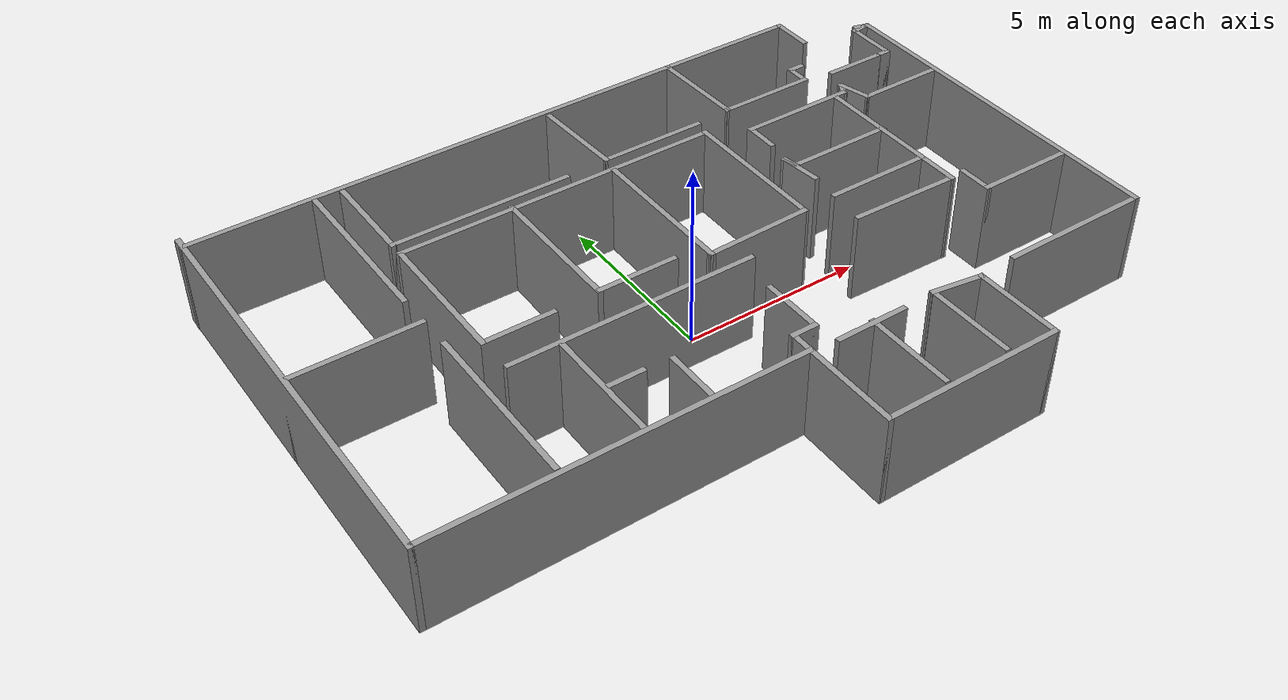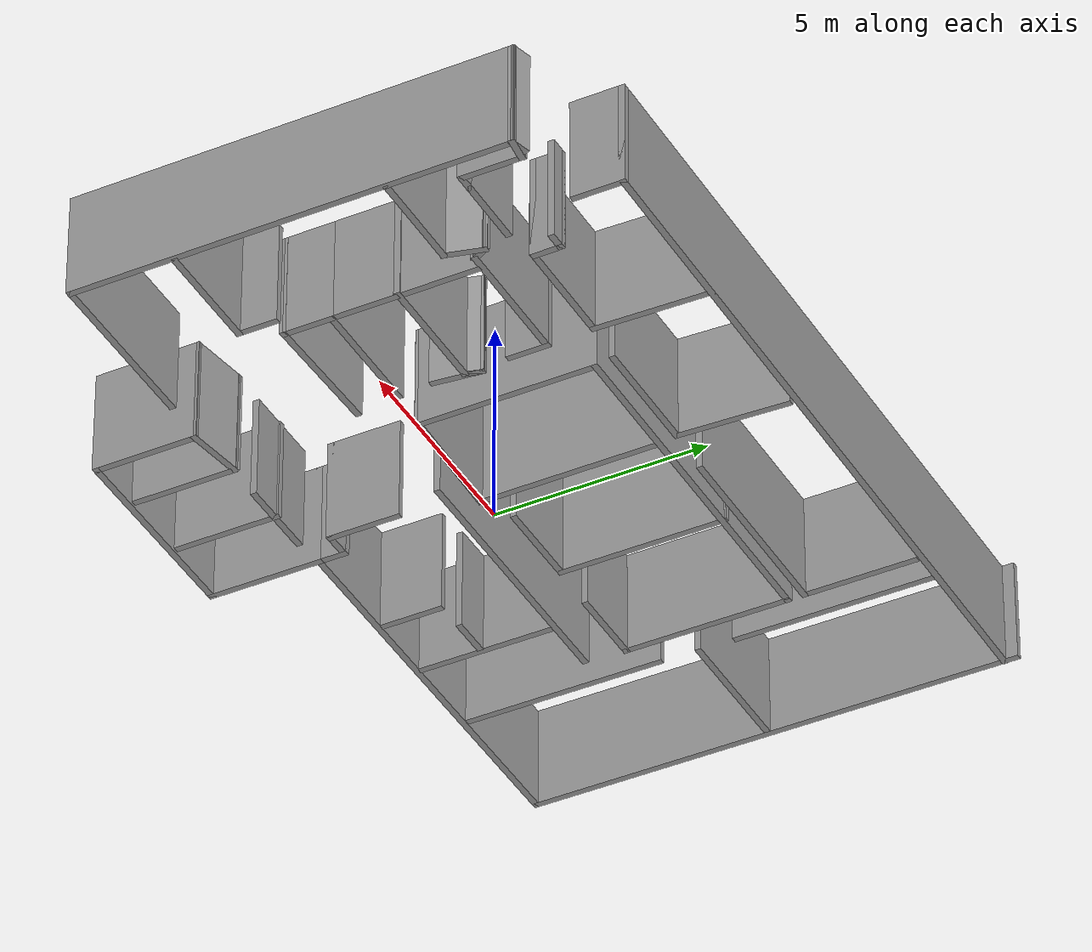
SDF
<?xml version='1.0'?>
<sdf version='1.6'>
  <model name='4th_floor_real'>
    <pose frame=''>0.402122 0.471759 0 0 -0 0</pose>
    <link name='Wall_10'>
      <collision name='Wall_10_Collision'>
        <geometry>
          <box>
            <size>10.25 0.15 2.5</size>
          </box>
        </geometry>
        <pose frame=''>0 0 1.25 0 -0 0</pose>
      </collision>
      <visual name='Wall_10_Visual'>
        <pose frame=''>0 0 1.25 0 -0 0</pose>
        <geometry>
          <box>
            <size>10.25 0.15 2.5</size>
          </box>
        </geometry>
        <material>
          <script>
            <uri>file://media/materials/scripts/gazebo.material</uri>
            <name>Gazebo/Grey</name>
          </script>
          <ambient>1 1 1 1</ambient>
        </material>
        <meta>
          <layer>0</layer>
        </meta>
      </visual>
      <pose frame=''>9.95518 0.377427 0 0 -0 1.5708</pose>
    </link>
    <link name='Wall_11'>
      <collision name='Wall_11_Collision'>
        <geometry>
          <box>
            <size>0.5 0.15 2.5</size>
          </box>
        </geometry>
        <pose frame=''>0 0 1.25 0 -0 0</pose>
      </collision>
      <visual name='Wall_11_Visual'>
        <pose frame=''>0 0 1.25 0 -0 0</pose>
        <geometry>
          <box>
            <size>0.5 0.15 2.5</size>
          </box>
        </geometry>
        <material>
          <script>
            <uri>file://media/materials/scripts/gazebo.material</uri>
            <name>Gazebo/Grey</name>
          </script>
          <ambient>1 1 1 1</ambient>
        </material>
        <meta>
          <layer>0</layer>
        </meta>
      </visual>
      <pose frame=''>9.78615 5.47272 0 0 -0 2.87979</pose>
    </link>
    <link name='Wall_13'>
      <collision name='Wall_13_Collision'>
        <geometry>
          <box>
            <size>1.25 0.15 2.5</size>
          </box>
        </geometry>
        <pose frame=''>0 0 1.25 0 -0 0</pose>
      </collision>
      <visual name='Wall_13_Visual'>
        <pose frame=''>0 0 1.25 0 -0 0</pose>
        <geometry>
          <box>
            <size>1.25 0.15 2.5</size>
          </box>
        </geometry>
        <material>
          <script>
            <uri>file://media/materials/scripts/gazebo.material</uri>
            <name>Gazebo/Grey</name>
          </script>
          <ambient>1 1 1 1</ambient>
        </material>
        <meta>
          <layer>0</layer>
        </meta>
      </visual>
      <pose frame=''>7.87796 6.27451 0 0 -0 1.5708</pose>
    </link>
    <link name='Wall_14'>
      <collision name='Wall_14_Collision'>
        <geometry>
          <box>
            <size>18 0.15 2.5</size>
          </box>
        </geometry>
        <pose frame=''>0 0 1.25 0 -0 0</pose>
      </collision>
      <visual name='Wall_14_Visual'>
        <pose frame=''>0 0 1.25 0 -0 0</pose>
        <geometry>
          <box>
            <size>18 0.15 2.5</size>
          </box>
        </geometry>
        <material>
          <script>
            <uri>file://media/materials/scripts/gazebo.material</uri>
            <name>Gazebo/Grey</name>
          </script>
          <ambient>1 1 1 1</ambient>
        </material>
        <meta>
          <layer>0</layer>
        </meta>
      </visual>
      <pose frame=''>-1.04704 6.82451 0 0 -0 3.14159</pose>
    </link>
    <link name='Wall_16'>
      <collision name='Wall_16_Collision'>
        <geometry>
          <box>
            <size>4.75 0.15 2.5</size>
          </box>
        </geometry>
        <pose frame=''>0 0 1.25 0 -0 0</pose>
      </collision>
      <visual name='Wall_16_Visual'>
        <pose frame=''>0 0 1.25 0 -0 0</pose>
        <geometry>
          <box>
            <size>4.75 0.15 2.5</size>
          </box>
        </geometry>
        <material>
          <script>
            <uri>file://media/materials/scripts/gazebo.material</uri>
            <name>Gazebo/Grey</name>
          </script>
          <ambient>1 1 1 1</ambient>
        </material>
        <meta>
          <layer>0</layer>
        </meta>
      </visual>
      <pose frame=''>-6.60513 4.39544 0 0 -0 -1.5708</pose>
    </link>
    <link name='Wall_18'>
      <collision name='Wall_18_Collision'>
        <geometry>
          <box>
            <size>3.5 0.15 2.5</size>
          </box>
        </geometry>
        <pose frame=''>0 0 1.25 0 -0 0</pose>
      </collision>
      <visual name='Wall_18_Visual'>
        <pose frame=''>0 0 1.25 0 -0 0</pose>
        <geometry>
          <box>
            <size>3.5 0.15 2.5</size>
          </box>
        </geometry>
        <material>
          <script>
            <uri>file://media/materials/scripts/gazebo.material</uri>
            <name>Gazebo/Grey</name>
          </script>
          <ambient>1 1 1 1</ambient>
        </material>
        <meta>
          <layer>0</layer>
        </meta>
      </visual>
      <pose frame=''>-8.28795 1.19348 0 0 -0 0</pose>
    </link>
    <link name='Wall_20'>
      <collision name='Wall_20_Collision'>
        <geometry>
          <box>
            <size>4.75 0.15 2.5</size>
          </box>
        </geometry>
        <pose frame=''>0 0 1.25 0 -0 0</pose>
      </collision>
      <visual name='Wall_20_Visual'>
        <pose frame=''>0 0 1.25 0 -0 0</pose>
        <geometry>
          <box>
            <size>4.75 0.15 2.5</size>
          </box>
        </geometry>
        <material>
          <script>
            <uri>file://media/materials/scripts/gazebo.material</uri>
            <name>Gazebo/Grey</name>
          </script>
          <ambient>1 1 1 1</ambient>
        </material>
        <meta>
          <layer>0</layer>
        </meta>
      </visual>
      <pose frame=''>-6.56468 -2.03699 0 0 -0 -1.5708</pose>
    </link>
    <link name='Wall_22'>
      <collision name='Wall_22_Collision'>
        <geometry>
          <box>
            <size>6.75 0.15 2.5</size>
          </box>
        </geometry>
        <pose frame=''>0 0 1.25 0 -0 0</pose>
      </collision>
      <visual name='Wall_22_Visual'>
        <pose frame=''>0 0 1.25 0 -0 0</pose>
        <geometry>
          <box>
            <size>6.75 0.15 2.5</size>
          </box>
        </geometry>
        <material>
          <script>
            <uri>file://media/materials/scripts/gazebo.material</uri>
            <name>Gazebo/Grey</name>
          </script>
          <ambient>1 1 1 1</ambient>
        </material>
        <meta>
          <layer>0</layer>
        </meta>
      </visual>
      <pose frame=''>-2.49602 -1.15294 0 0 -0 0</pose>
    </link>
    <link name='Wall_24'>
      <collision name='Wall_24_Collision'>
        <geometry>
          <box>
            <size>3.25 0.15 2.5</size>
          </box>
        </geometry>
        <pose frame=''>0 0 1.25 0 -0 0</pose>
      </collision>
      <visual name='Wall_24_Visual'>
        <pose frame=''>0 0 1.25 0 -0 0</pose>
        <geometry>
          <box>
            <size>3.25 0.15 2.5</size>
          </box>
        </geometry>
        <material>
          <script>
            <uri>file://media/materials/scripts/gazebo.material</uri>
            <name>Gazebo/Grey</name>
          </script>
          <ambient>1 1 1 1</ambient>
        </material>
        <meta>
          <layer>0</layer>
        </meta>
      </visual>
      <pose frame=''>-4.46099 -2.8243 0 0 -0 -1.5708</pose>
    </link>
    <link name='Wall_26'>
      <collision name='Wall_26_Collision'>
        <geometry>
          <box>
            <size>1 0.15 2.5</size>
          </box>
        </geometry>
        <pose frame=''>0 0 1.25 0 -0 0</pose>
      </collision>
      <visual name='Wall_26_Visual'>
        <pose frame=''>0 0 1.25 0 -0 0</pose>
        <geometry>
          <box>
            <size>1 0.15 2.5</size>
          </box>
        </geometry>
        <material>
          <script>
            <uri>file://media/materials/scripts/gazebo.material</uri>
            <name>Gazebo/Grey</name>
          </script>
          <ambient>1 1 1 1</ambient>
        </material>
        <meta>
          <layer>0</layer>
        </meta>
      </visual>
      <pose frame=''>-3.91462 -2.93298 0 0 -0 0</pose>
    </link>
    <link name='Wall_28'>
      <collision name='Wall_28_Collision'>
        <geometry>
          <box>
            <size>1.5 0.15 2.5</size>
          </box>
        </geometry>
        <pose frame=''>0 0 1.25 0 -0 0</pose>
      </collision>
      <visual name='Wall_28_Visual'>
        <pose frame=''>0 0 1.25 0 -0 0</pose>
        <geometry>
          <box>
            <size>1.5 0.15 2.5</size>
          </box>
        </geometry>
        <material>
          <script>
            <uri>file://media/materials/scripts/gazebo.material</uri>
            <name>Gazebo/Grey</name>
          </script>
          <ambient>1 1 1 1</ambient>
        </material>
        <meta>
          <layer>0</layer>
        </meta>
      </visual>
      <pose frame=''>-2.7214 -3.6889 0 0 -0 -1.5708</pose>
    </link>
    <link name='Wall_3'>
      <collision name='Wall_3_Collision'>
        <geometry>
          <box>
            <size>11.75 0.15 2.5</size>
          </box>
        </geometry>
        <pose frame=''>0 0 1.25 0 -0 0</pose>
      </collision>
      <visual name='Wall_3_Visual'>
        <pose frame=''>0 0 1.25 0 -0 0</pose>
        <geometry>
          <box>
            <size>11.75 0.15 2.5</size>
          </box>
        </geometry>
        <material>
          <script>
            <uri>file://media/materials/scripts/gazebo.material</uri>
            <name>Gazebo/Grey</name>
          </script>
          <ambient>1 1 1 1</ambient>
        </material>
        <meta>
          <layer>0</layer>
        </meta>
      </visual>
      <pose frame=''>-9.96295 1.3 0 0 -0 -1.5708</pose>
    </link>
    <link name='Wall_30'>
      <collision name='Wall_30_Collision'>
        <geometry>
          <box>
            <size>0.75 0.15 2.5</size>
          </box>
        </geometry>
        <pose frame=''>0 0 1.25 0 -0 0</pose>
      </collision>
      <visual name='Wall_30_Visual'>
        <pose frame=''>0 0 1.25 0 -0 0</pose>
        <geometry>
          <box>
            <size>0.75 0.15 2.5</size>
          </box>
        </geometry>
        <material>
          <script>
            <uri>file://media/materials/scripts/gazebo.material</uri>
            <name>Gazebo/Grey</name>
          </script>
          <ambient>1 1 1 1</ambient>
        </material>
        <meta>
          <layer>0</layer>
        </meta>
      </visual>
      <pose frame=''>-0.112948 -4.2 0 0 -0 1.5708</pose>
    </link>
    <link name='Wall_32'>
      <collision name='Wall_32_Collision'>
        <geometry>
          <box>
            <size>0.75 0.15 2.5</size>
          </box>
        </geometry>
        <pose frame=''>0 0 1.25 0 -0 0</pose>
      </collision>
      <visual name='Wall_32_Visual'>
        <pose frame=''>0 0 1.25 0 -0 0</pose>
        <geometry>
          <box>
            <size>0.75 0.15 2.5</size>
          </box>
        </geometry>
        <material>
          <script>
            <uri>file://media/materials/scripts/gazebo.material</uri>
            <name>Gazebo/Grey</name>
          </script>
          <ambient>1 1 1 1</ambient>
        </material>
        <meta>
          <layer>0</layer>
        </meta>
      </visual>
      <pose frame=''>0.187052 -3.9 0 0 -0 0</pose>
    </link>
    <link name='Wall_33'>
      <collision name='Wall_33_Collision'>
        <geometry>
          <box>
            <size>1.75 0.15 2.5</size>
          </box>
        </geometry>
        <pose frame=''>0 0 1.25 0 -0 0</pose>
      </collision>
      <visual name='Wall_33_Visual'>
        <pose frame=''>0 0 1.25 0 -0 0</pose>
        <geometry>
          <box>
            <size>1.75 0.15 2.5</size>
          </box>
        </geometry>
        <material>
          <script>
            <uri>file://media/materials/scripts/gazebo.material</uri>
            <name>Gazebo/Grey</name>
          </script>
          <ambient>1 1 1 1</ambient>
        </material>
        <meta>
          <layer>0</layer>
        </meta>
      </visual>
      <pose frame=''>0.487052 -3.1 0 0 -0 1.5708</pose>
    </link>
    <link name='Wall_35'>
      <collision name='Wall_35_Collision'>
        <geometry>
          <box>
            <size>2 0.15 2.5</size>
          </box>
        </geometry>
        <pose frame=''>0 0 1.25 0 -0 0</pose>
      </collision>
      <visual name='Wall_35_Visual'>
        <pose frame=''>0 0 1.25 0 -0 0</pose>
        <geometry>
          <box>
            <size>2 0.15 2.5</size>
          </box>
        </geometry>
        <material>
          <script>
            <uri>file://media/materials/scripts/gazebo.material</uri>
            <name>Gazebo/Grey</name>
          </script>
          <ambient>1 1 1 1</ambient>
        </material>
        <meta>
          <layer>0</layer>
        </meta>
      </visual>
      <pose frame=''>1.56141 -4.59166 0 0 -0 0</pose>
    </link>
    <link name='Wall_37'>
      <collision name='Wall_37_Collision'>
        <geometry>
          <box>
            <size>2.5 0.15 2.5</size>
          </box>
        </geometry>
        <pose frame=''>0 0 1.25 0 -0 0</pose>
      </collision>
      <visual name='Wall_37_Visual'>
        <pose frame=''>0 0 1.25 0 -0 0</pose>
        <geometry>
          <box>
            <size>2.5 0.15 2.5</size>
          </box>
        </geometry>
        <material>
          <script>
            <uri>file://media/materials/scripts/gazebo.material</uri>
            <name>Gazebo/Grey</name>
          </script>
          <ambient>1 1 1 1</ambient>
        </material>
        <meta>
          <layer>0</layer>
        </meta>
      </visual>
      <pose frame=''>1.6478 -5.72621 0 0 -0 -1.5708</pose>
    </link>
    <link name='Wall_39'>
      <collision name='Wall_39_Collision'>
        <geometry>
          <box>
            <size>2.5 0.15 2.5</size>
          </box>
        </geometry>
        <pose frame=''>0 0 1.25 0 -0 0</pose>
      </collision>
      <visual name='Wall_39_Visual'>
        <pose frame=''>0 0 1.25 0 -0 0</pose>
        <geometry>
          <box>
            <size>2.5 0.15 2.5</size>
          </box>
        </geometry>
        <material>
          <script>
            <uri>file://media/materials/scripts/gazebo.material</uri>
            <name>Gazebo/Grey</name>
          </script>
          <ambient>1 1 1 1</ambient>
        </material>
        <meta>
          <layer>0</layer>
        </meta>
      </visual>
      <pose frame=''>3.42785 -5.72621 0 0 -0 -1.5708</pose>
    </link>
    <link name='Wall_4'>
      <collision name='Wall_4_Collision'>
        <geometry>
          <box>
            <size>10 0.15 2.5</size>
          </box>
        </geometry>
        <pose frame=''>0 0 1.25 0 -0 0</pose>
      </collision>
      <visual name='Wall_4_Visual'>
        <pose frame=''>0 0 1.25 0 -0 0</pose>
        <geometry>
          <box>
            <size>10 0.15 2.5</size>
          </box>
        </geometry>
        <material>
          <script>
            <uri>file://media/materials/scripts/gazebo.material</uri>
            <name>Gazebo/Grey</name>
          </script>
          <ambient>1 1 1 1</ambient>
        </material>
        <meta>
          <layer>0</layer>
        </meta>
      </visual>
      <pose frame=''>-5.03795 -4.5 0 0 -0 0</pose>
    </link>
    <link name='Wall_41'>
      <collision name='Wall_41_Collision'>
        <geometry>
          <box>
            <size>1.47421 0.15 2.5</size>
          </box>
        </geometry>
        <pose frame=''>0 0 1.25 0 -0 0</pose>
      </collision>
      <visual name='Wall_41_Visual'>
        <pose frame=''>0 0 1.25 0 -0 0</pose>
        <geometry>
          <box>
            <size>1.47421 0.15 2.5</size>
          </box>
        </geometry>
        <material>
          <script>
            <uri>file://media/materials/scripts/gazebo.material</uri>
            <name>Gazebo/Grey</name>
          </script>
          <ambient>1 1 1 1</ambient>
        </material>
        <meta>
          <layer>0</layer>
        </meta>
      </visual>
      <pose frame=''>4.08245 -4.6506 0 0 -0 -0.150692</pose>
    </link>
    <link name='Wall_43'>
      <collision name='Wall_43_Collision'>
        <geometry>
          <box>
            <size>9 0.15 2.5</size>
          </box>
        </geometry>
        <pose frame=''>0 0 1.25 0 -0 0</pose>
      </collision>
      <visual name='Wall_43_Visual'>
        <pose frame=''>0 0 1.25 0 -0 0</pose>
        <geometry>
          <box>
            <size>9 0.15 2.5</size>
          </box>
        </geometry>
        <material>
          <script>
            <uri>file://media/materials/scripts/gazebo.material</uri>
            <name>Gazebo/Grey</name>
          </script>
          <ambient>1 1 1 1</ambient>
        </material>
        <meta>
          <layer>0</layer>
        </meta>
      </visual>
      <pose frame=''>-1.45193 3.66128 0 0 -0 0</pose>
    </link>
    <link name='Wall_45'>
      <collision name='Wall_45_Collision'>
        <geometry>
          <box>
            <size>4 0.15 2.5</size>
          </box>
        </geometry>
        <pose frame=''>0 0 1.25 0 -0 0</pose>
      </collision>
      <visual name='Wall_45_Visual'>
        <pose frame=''>0 0 1.25 0 -0 0</pose>
        <geometry>
          <box>
            <size>4 0.15 2.5</size>
          </box>
        </geometry>
        <material>
          <script>
            <uri>file://media/materials/scripts/gazebo.material</uri>
            <name>Gazebo/Grey</name>
          </script>
          <ambient>1 1 1 1</ambient>
        </material>
        <meta>
          <layer>0</layer>
        </meta>
      </visual>
      <pose frame=''>-5.87693 1.73628 0 0 -0 -1.5708</pose>
    </link>
    <link name='Wall_46'>
      <collision name='Wall_46_Collision'>
        <geometry>
          <box>
            <size>2 0.15 2.5</size>
          </box>
        </geometry>
        <pose frame=''>0 0 1.25 0 -0 0</pose>
      </collision>
      <visual name='Wall_46_Visual'>
        <pose frame=''>0 0 1.25 0 -0 0</pose>
        <geometry>
          <box>
            <size>2 0.15 2.5</size>
          </box>
        </geometry>
        <material>
          <script>
            <uri>file://media/materials/scripts/gazebo.material</uri>
            <name>Gazebo/Grey</name>
          </script>
          <ambient>1 1 1 1</ambient>
        </material>
        <meta>
          <layer>0</layer>
        </meta>
      </visual>
      <pose frame=''>-4.95193 -0.188724 0 0 -0 0</pose>
    </link>
    <link name='Wall_48'>
      <collision name='Wall_48_Collision'>
        <geometry>
          <box>
            <size>4 0.15 2.5</size>
          </box>
        </geometry>
        <pose frame=''>0 0 1.25 0 -0 0</pose>
      </collision>
      <visual name='Wall_48_Visual'>
        <pose frame=''>0 0 1.25 0 -0 0</pose>
        <geometry>
          <box>
            <size>4 0.15 2.5</size>
          </box>
        </geometry>
        <material>
          <script>
            <uri>file://media/materials/scripts/gazebo.material</uri>
            <name>Gazebo/Grey</name>
          </script>
          <ambient>1 1 1 1</ambient>
        </material>
        <meta>
          <layer>0</layer>
        </meta>
      </visual>
      <pose frame=''>-2.80231 1.77673 0 0 -0 -1.5708</pose>
    </link>
    <link name='Wall_49'>
      <collision name='Wall_49_Collision'>
        <geometry>
          <box>
            <size>2.25 0.15 2.5</size>
          </box>
        </geometry>
        <pose frame=''>0 0 1.25 0 -0 0</pose>
      </collision>
      <visual name='Wall_49_Visual'>
        <pose frame=''>0 0 1.25 0 -0 0</pose>
        <geometry>
          <box>
            <size>2.25 0.15 2.5</size>
          </box>
        </geometry>
        <material>
          <script>
            <uri>file://media/materials/scripts/gazebo.material</uri>
            <name>Gazebo/Grey</name>
          </script>
          <ambient>1 1 1 1</ambient>
        </material>
        <meta>
          <layer>0</layer>
        </meta>
      </visual>
      <pose frame=''>-1.75231 -0.148269 0 0 -0 0</pose>
    </link>
    <link name='Wall_5'>
      <collision name='Wall_5_Collision'>
        <geometry>
          <box>
            <size>2.75 0.15 2.5</size>
          </box>
        </geometry>
        <pose frame=''>0 0 1.25 0 -0 0</pose>
      </collision>
      <visual name='Wall_5_Visual'>
        <pose frame=''>0 0 1.25 0 -0 0</pose>
        <geometry>
          <box>
            <size>2.75 0.15 2.5</size>
          </box>
        </geometry>
        <material>
          <script>
            <uri>file://media/materials/scripts/gazebo.material</uri>
            <name>Gazebo/Grey</name>
          </script>
          <ambient>1 1 1 1</ambient>
        </material>
        <meta>
          <layer>0</layer>
        </meta>
      </visual>
      <pose frame=''>-0.112948 -5.8 0 0 -0 -1.5708</pose>
    </link>
    <link name='Wall_51'>
      <collision name='Wall_51_Collision'>
        <geometry>
          <box>
            <size>4.25 0.15 2.5</size>
          </box>
        </geometry>
        <pose frame=''>0 0 1.25 0 -0 0</pose>
      </collision>
      <visual name='Wall_51_Visual'>
        <pose frame=''>0 0 1.25 0 -0 0</pose>
        <geometry>
          <box>
            <size>4.25 0.15 2.5</size>
          </box>
        </geometry>
        <material>
          <script>
            <uri>file://media/materials/scripts/gazebo.material</uri>
            <name>Gazebo/Grey</name>
          </script>
          <ambient>1 1 1 1</ambient>
        </material>
        <meta>
          <layer>0</layer>
        </meta>
      </visual>
      <pose frame=''>0.110491 1.53036 0 0 -0 -1.5708</pose>
    </link>
    <link name='Wall_53'>
      <collision name='Wall_53_Collision'>
        <geometry>
          <box>
            <size>4.25 0.15 2.5</size>
          </box>
        </geometry>
        <pose frame=''>0 0 1.25 0 -0 0</pose>
      </collision>
      <visual name='Wall_53_Visual'>
        <pose frame=''>0 0 1.25 0 -0 0</pose>
        <geometry>
          <box>
            <size>4.25 0.15 2.5</size>
          </box>
        </geometry>
        <material>
          <script>
            <uri>file://media/materials/scripts/gazebo.material</uri>
            <name>Gazebo/Grey</name>
          </script>
          <ambient>1 1 1 1</ambient>
        </material>
        <meta>
          <layer>0</layer>
        </meta>
      </visual>
      <pose frame=''>2.97307 1.61128 0 0 -0 -1.5708</pose>
    </link>
    <link name='Wall_54'>
      <collision name='Wall_54_Collision'>
        <geometry>
          <box>
            <size>3.01372 0.15 2.5</size>
          </box>
        </geometry>
        <pose frame=''>0 0 1.25 0 -0 0</pose>
      </collision>
      <visual name='Wall_54_Visual'>
        <pose frame=''>0 0 1.25 0 -0 0</pose>
        <geometry>
          <box>
            <size>3.01372 0.15 2.5</size>
          </box>
        </geometry>
        <material>
          <script>
            <uri>file://media/materials/scripts/gazebo.material</uri>
            <name>Gazebo/Grey</name>
          </script>
          <ambient>1 1 1 1</ambient>
        </material>
        <meta>
          <layer>0</layer>
        </meta>
      </visual>
      <pose frame=''>1.54178 -0.47918 0 0 -0 -3.11334</pose>
    </link>
    <link name='Wall_56'>
      <collision name='Wall_56_Collision'>
        <geometry>
          <box>
            <size>2.75 0.15 2.5</size>
          </box>
        </geometry>
        <pose frame=''>0 0 1.25 0 -0 0</pose>
      </collision>
      <visual name='Wall_56_Visual'>
        <pose frame=''>0 0 1.25 0 -0 0</pose>
        <geometry>
          <box>
            <size>2.75 0.15 2.5</size>
          </box>
        </geometry>
        <material>
          <script>
            <uri>file://media/materials/scripts/gazebo.material</uri>
            <name>Gazebo/Grey</name>
          </script>
          <ambient>1 1 1 1</ambient>
        </material>
        <meta>
          <layer>0</layer>
        </meta>
      </visual>
      <pose frame=''>-5.87693 5.35499 0 0 -0 -1.5708</pose>
    </link>
    <link name='Wall_57'>
      <collision name='Wall_57_Collision'>
        <geometry>
          <box>
            <size>5 0.15 2.5</size>
          </box>
        </geometry>
        <pose frame=''>0 0 1.25 0 -0 0</pose>
      </collision>
      <visual name='Wall_57_Visual'>
        <pose frame=''>0 0 1.25 0 -0 0</pose>
        <geometry>
          <box>
            <size>5 0.15 2.5</size>
          </box>
        </geometry>
        <material>
          <script>
            <uri>file://media/materials/scripts/gazebo.material</uri>
            <name>Gazebo/Grey</name>
          </script>
          <ambient>1 1 1 1</ambient>
        </material>
        <meta>
          <layer>0</layer>
        </meta>
      </visual>
      <pose frame=''>-3.45194 4.05499 0 0 -0 0</pose>
    </link>
    <link name='Wall_59'>
      <collision name='Wall_59_Collision'>
        <geometry>
          <box>
            <size>3 0.15 2.5</size>
          </box>
        </geometry>
        <pose frame=''>0 0 1.25 0 -0 0</pose>
      </collision>
      <visual name='Wall_59_Visual'>
        <pose frame=''>0 0 1.25 0 -0 0</pose>
        <geometry>
          <box>
            <size>3 0.15 2.5</size>
          </box>
        </geometry>
        <material>
          <script>
            <uri>file://media/materials/scripts/gazebo.material</uri>
            <name>Gazebo/Grey</name>
          </script>
          <ambient>1 1 1 1</ambient>
        </material>
        <meta>
          <layer>0</layer>
        </meta>
      </visual>
      <pose frame=''>1.6164 4.10629 0 0 -0 0</pose>
    </link>
    <link name='Wall_6'>
      <collision name='Wall_6_Collision'>
        <geometry>
          <box>
            <size>5 0.15 2.5</size>
          </box>
        </geometry>
        <pose frame=''>0 0 1.25 0 -0 0</pose>
      </collision>
      <visual name='Wall_6_Visual'>
        <pose frame=''>0 0 1.25 0 -0 0</pose>
        <geometry>
          <box>
            <size>5 0.15 2.5</size>
          </box>
        </geometry>
        <material>
          <script>
            <uri>file://media/materials/scripts/gazebo.material</uri>
            <name>Gazebo/Grey</name>
          </script>
          <ambient>1 1 1 1</ambient>
        </material>
        <meta>
          <layer>0</layer>
        </meta>
      </visual>
      <pose frame=''>2.31205 -7.1 0 0 -0 0</pose>
    </link>
    <link name='Wall_61'>
      <collision name='Wall_61_Collision'>
        <geometry>
          <box>
            <size>2.75 0.15 2.5</size>
          </box>
        </geometry>
        <pose frame=''>0 0 1.25 0 -0 0</pose>
      </collision>
      <visual name='Wall_61_Visual'>
        <pose frame=''>0 0 1.25 0 -0 0</pose>
        <geometry>
          <box>
            <size>2.75 0.15 2.5</size>
          </box>
        </geometry>
        <material>
          <script>
            <uri>file://media/materials/scripts/gazebo.material</uri>
            <name>Gazebo/Grey</name>
          </script>
          <ambient>1 1 1 1</ambient>
        </material>
        <meta>
          <layer>0</layer>
        </meta>
      </visual>
      <pose frame=''>5.37514 4.1872 0 0 -0 0</pose>
    </link>
    <link name='Wall_62'>
      <collision name='Wall_62_Collision'>
        <geometry>
          <box>
            <size>0.75 0.15 2.5</size>
          </box>
        </geometry>
        <pose frame=''>0 0 1.25 0 -0 0</pose>
      </collision>
      <visual name='Wall_62_Visual'>
        <pose frame=''>0 0 1.25 0 -0 0</pose>
        <geometry>
          <box>
            <size>0.75 0.15 2.5</size>
          </box>
        </geometry>
        <material>
          <script>
            <uri>file://media/materials/scripts/gazebo.material</uri>
            <name>Gazebo/Grey</name>
          </script>
          <ambient>1 1 1 1</ambient>
        </material>
        <meta>
          <layer>0</layer>
        </meta>
      </visual>
      <pose frame=''>6.67514 4.4872 0 0 -0 1.5708</pose>
    </link>
    <link name='Wall_63'>
      <collision name='Wall_63_Collision'>
        <geometry>
          <box>
            <size>0.5 0.15 2.5</size>
          </box>
        </geometry>
        <pose frame=''>0 0 1.25 0 -0 0</pose>
      </collision>
      <visual name='Wall_63_Visual'>
        <pose frame=''>0 0 1.25 0 -0 0</pose>
        <geometry>
          <box>
            <size>0.5 0.15 2.5</size>
          </box>
        </geometry>
        <material>
          <script>
            <uri>file://media/materials/scripts/gazebo.material</uri>
            <name>Gazebo/Grey</name>
          </script>
          <ambient>1 1 1 1</ambient>
        </material>
        <meta>
          <layer>0</layer>
        </meta>
      </visual>
      <pose frame=''>6.85014 4.7872 0 0 -0 0</pose>
    </link>
    <link name='Wall_65'>
      <collision name='Wall_65_Collision'>
        <geometry>
          <box>
            <size>2.78086 0.15 2.5</size>
          </box>
        </geometry>
        <pose frame=''>0 0 1.25 0 -0 0</pose>
      </collision>
      <visual name='Wall_65_Visual'>
        <pose frame=''>0 0 1.25 0 -0 0</pose>
        <geometry>
          <box>
            <size>2.78086 0.15 2.5</size>
          </box>
        </geometry>
        <material>
          <script>
            <uri>file://media/materials/scripts/gazebo.material</uri>
            <name>Gazebo/Grey</name>
          </script>
          <ambient>1 1 1 1</ambient>
        </material>
        <meta>
          <layer>0</layer>
        </meta>
      </visual>
      <pose frame=''>4.03468 5.502 0 0 -0 -1.54004</pose>
    </link>
    <link name='Wall_67'>
      <collision name='Wall_67_Collision'>
        <geometry>
          <box>
            <size>2.66118 0.15 2.5</size>
          </box>
        </geometry>
        <pose frame=''>0 0 1.25 0 -0 0</pose>
      </collision>
      <visual name='Wall_67_Visual'>
        <pose frame=''>0 0 1.25 0 -0 0</pose>
        <geometry>
          <box>
            <size>2.66118 0.15 2.5</size>
          </box>
        </geometry>
        <material>
          <script>
            <uri>file://media/materials/scripts/gazebo.material</uri>
            <name>Gazebo/Grey</name>
          </script>
          <ambient>1 1 1 1</ambient>
        </material>
        <meta>
          <layer>0</layer>
        </meta>
      </visual>
      <pose frame=''>0.130718 5.36041 0 0 -0 -1.52245</pose>
    </link>
    <link name='Wall_69'>
      <collision name='Wall_69_Collision'>
        <geometry>
          <box>
            <size>1 0.15 2.5</size>
          </box>
        </geometry>
        <pose frame=''>0 0 1.25 0 -0 0</pose>
      </collision>
      <visual name='Wall_69_Visual'>
        <pose frame=''>0 0 1.25 0 -0 0</pose>
        <geometry>
          <box>
            <size>1 0.15 2.5</size>
          </box>
        </geometry>
        <material>
          <script>
            <uri>file://media/materials/scripts/gazebo.material</uri>
            <name>Gazebo/Grey</name>
          </script>
          <ambient>1 1 1 1</ambient>
        </material>
        <meta>
          <layer>0</layer>
        </meta>
      </visual>
      <pose frame=''>4.03468 2.67033 0 0 -0 1.5708</pose>
    </link>
    <link name='Wall_7'>
      <collision name='Wall_7_Collision'>
        <geometry>
          <box>
            <size>2.5 0.15 2.5</size>
          </box>
        </geometry>
        <pose frame=''>0 0 1.25 0 -0 0</pose>
      </collision>
      <visual name='Wall_7_Visual'>
        <pose frame=''>0 0 1.25 0 -0 0</pose>
        <geometry>
          <box>
            <size>2.5 0.15 2.5</size>
          </box>
        </geometry>
        <material>
          <script>
            <uri>file://media/materials/scripts/gazebo.material</uri>
            <name>Gazebo/Grey</name>
          </script>
          <ambient>1 1 1 1</ambient>
        </material>
        <meta>
          <layer>0</layer>
        </meta>
      </visual>
      <pose frame=''>4.73705 -5.925 0 0 -0 1.5708</pose>
    </link>
    <link name='Wall_70'>
      <collision name='Wall_70_Collision'>
        <geometry>
          <box>
            <size>3.25 0.15 2.5</size>
          </box>
        </geometry>
        <pose frame=''>0 0 1.25 0 -0 0</pose>
      </collision>
      <visual name='Wall_70_Visual'>
        <pose frame=''>0 0 1.25 0 -0 0</pose>
        <geometry>
          <box>
            <size>3.25 0.15 2.5</size>
          </box>
        </geometry>
        <material>
          <script>
            <uri>file://media/materials/scripts/gazebo.material</uri>
            <name>Gazebo/Grey</name>
          </script>
          <ambient>1 1 1 1</ambient>
        </material>
        <meta>
          <layer>0</layer>
        </meta>
      </visual>
      <pose frame=''>5.58468 3.09533 0 0 -0 0</pose>
    </link>
    <link name='Wall_71'>
      <collision name='Wall_71_Collision'>
        <geometry>
          <box>
            <size>0.5 0.15 2.5</size>
          </box>
        </geometry>
        <pose frame=''>0 0 1.25 0 -0 0</pose>
      </collision>
      <visual name='Wall_71_Visual'>
        <pose frame=''>0 0 1.25 0 -0 0</pose>
        <geometry>
          <box>
            <size>0.5 0.15 2.5</size>
          </box>
        </geometry>
        <material>
          <script>
            <uri>file://media/materials/scripts/gazebo.material</uri>
            <name>Gazebo/Grey</name>
          </script>
          <ambient>1 1 1 1</ambient>
        </material>
        <meta>
          <layer>0</layer>
        </meta>
      </visual>
      <pose frame=''>7.22218 3.24688 0 0 -0 1.0472</pose>
    </link>
    <link name='Wall_73'>
      <collision name='Wall_73_Collision'>
        <geometry>
          <box>
            <size>3.5 0.15 2.5</size>
          </box>
        </geometry>
        <pose frame=''>0 0 1.25 0 -0 0</pose>
      </collision>
      <visual name='Wall_73_Visual'>
        <pose frame=''>0 0 1.25 0 -0 0</pose>
        <geometry>
          <box>
            <size>3.5 0.15 2.5</size>
          </box>
        </geometry>
        <material>
          <script>
            <uri>file://media/materials/scripts/gazebo.material</uri>
            <name>Gazebo/Grey</name>
          </script>
          <ambient>1 1 1 1</ambient>
        </material>
        <meta>
          <layer>0</layer>
        </meta>
      </visual>
      <pose frame=''>6.82612 1.29853 0 0 -0 -1.5708</pose>
    </link>
    <link name='Wall_74'>
      <collision name='Wall_74_Collision'>
        <geometry>
          <box>
            <size>3 0.15 2.5</size>
          </box>
        </geometry>
        <pose frame=''>0 0 1.25 0 -0 0</pose>
      </collision>
      <visual name='Wall_74_Visual'>
        <pose frame=''>0 0 1.25 0 -0 0</pose>
        <geometry>
          <box>
            <size>3 0.15 2.5</size>
          </box>
        </geometry>
        <material>
          <script>
            <uri>file://media/materials/scripts/gazebo.material</uri>
            <name>Gazebo/Grey</name>
          </script>
          <ambient>1 1 1 1</ambient>
        </material>
        <meta>
          <layer>0</layer>
        </meta>
      </visual>
      <pose frame=''>5.40112 -0.376469 0 0 -0 3.14159</pose>
    </link>
    <link name='Wall_76'>
      <collision name='Wall_76_Collision'>
        <geometry>
          <box>
            <size>0.5 0.15 2.5</size>
          </box>
        </geometry>
        <pose frame=''>0 0 1.25 0 -0 0</pose>
      </collision>
      <visual name='Wall_76_Visual'>
        <pose frame=''>0 0 1.25 0 -0 0</pose>
        <geometry>
          <box>
            <size>0.5 0.15 2.5</size>
          </box>
        </geometry>
        <material>
          <script>
            <uri>file://media/materials/scripts/gazebo.material</uri>
            <name>Gazebo/Grey</name>
          </script>
          <ambient>1 1 1 1</ambient>
        </material>
        <meta>
          <layer>0</layer>
        </meta>
      </visual>
      <pose frame=''>3.95861 1.34809 0 0 -0 -1.309</pose>
    </link>
    <link name='Wall_77'>
      <collision name='Wall_77_Collision'>
        <geometry>
          <box>
            <size>3 0.15 2.5</size>
          </box>
        </geometry>
        <pose frame=''>0 0 1.25 0 -0 0</pose>
      </collision>
      <visual name='Wall_77_Visual'>
        <pose frame=''>0 0 1.25 0 -0 0</pose>
        <geometry>
          <box>
            <size>3 0.15 2.5</size>
          </box>
        </geometry>
        <material>
          <script>
            <uri>file://media/materials/scripts/gazebo.material</uri>
            <name>Gazebo/Grey</name>
          </script>
          <ambient>1 1 1 1</ambient>
        </material>
        <meta>
          <layer>0</layer>
        </meta>
      </visual>
      <pose frame=''>5.4289 1.17906 0 0 -0 0</pose>
    </link>
    <link name='Wall_79'>
      <collision name='Wall_79_Collision'>
        <geometry>
          <box>
            <size>1.20882 0.15 2.5</size>
          </box>
        </geometry>
        <pose frame=''>0 0 1.25 0 -0 0</pose>
      </collision>
      <visual name='Wall_79_Visual'>
        <pose frame=''>0 0 1.25 0 -0 0</pose>
        <geometry>
          <box>
            <size>1.20882 0.15 2.5</size>
          </box>
        </geometry>
        <material>
          <script>
            <uri>file://media/materials/scripts/gazebo.material</uri>
            <name>Gazebo/Grey</name>
          </script>
          <ambient>1 1 1 1</ambient>
        </material>
        <meta>
          <layer>0</layer>
        </meta>
      </visual>
      <pose frame=''>3.974 0.991208 0 0 -0 1.68567</pose>
    </link>
    <link name='Wall_81'>
      <collision name='Wall_81_Collision'>
        <geometry>
          <box>
            <size>1.25 0.15 2.5</size>
          </box>
        </geometry>
        <pose frame=''>0 0 1.25 0 -0 0</pose>
      </collision>
      <visual name='Wall_81_Visual'>
        <pose frame=''>0 0 1.25 0 -0 0</pose>
        <geometry>
          <box>
            <size>1.25 0.15 2.5</size>
          </box>
        </geometry>
        <material>
          <script>
            <uri>file://media/materials/scripts/gazebo.material</uri>
            <name>Gazebo/Grey</name>
          </script>
          <ambient>1 1 1 1</ambient>
        </material>
        <meta>
          <layer>0</layer>
        </meta>
      </visual>
      <pose frame=''>6.82612 -0.926469 0 0 -0 -1.5708</pose>
    </link>
    <link name='Wall_83'>
      <collision name='Wall_83_Collision'>
        <geometry>
          <box>
            <size>1 0.15 2.5</size>
          </box>
        </geometry>
        <pose frame=''>0 0 1.25 0 -0 0</pose>
      </collision>
      <visual name='Wall_83_Visual'>
        <pose frame=''>0 0 1.25 0 -0 0</pose>
        <geometry>
          <box>
            <size>1 0.15 2.5</size>
          </box>
        </geometry>
        <material>
          <script>
            <uri>file://media/materials/scripts/gazebo.material</uri>
            <name>Gazebo/Grey</name>
          </script>
          <ambient>1 1 1 1</ambient>
        </material>
        <meta>
          <layer>0</layer>
        </meta>
      </visual>
      <pose frame=''>7.27113 -1.86113 0 0 -0 -1.5708</pose>
    </link>
    <link name='Wall_84'>
      <collision name='Wall_84_Collision'>
        <geometry>
          <box>
            <size>2.75 0.15 2.5</size>
          </box>
        </geometry>
        <pose frame=''>0 0 1.25 0 -0 0</pose>
      </collision>
      <visual name='Wall_84_Visual'>
        <pose frame=''>0 0 1.25 0 -0 0</pose>
        <geometry>
          <box>
            <size>2.75 0.15 2.5</size>
          </box>
        </geometry>
        <material>
          <script>
            <uri>file://media/materials/scripts/gazebo.material</uri>
            <name>Gazebo/Grey</name>
          </script>
          <ambient>1 1 1 1</ambient>
        </material>
        <meta>
          <layer>0</layer>
        </meta>
      </visual>
      <pose frame=''>8.57113 -2.28613 0 0 -0 0</pose>
    </link>
    <link name='Wall_86'>
      <collision name='Wall_86_Collision'>
        <geometry>
          <box>
            <size>1.75 0.15 2.5</size>
          </box>
        </geometry>
        <pose frame=''>0 0 1.25 0 -0 0</pose>
      </collision>
      <visual name='Wall_86_Visual'>
        <pose frame=''>0 0 1.25 0 -0 0</pose>
        <geometry>
          <box>
            <size>1.75 0.15 2.5</size>
          </box>
        </geometry>
        <material>
          <script>
            <uri>file://media/materials/scripts/gazebo.material</uri>
            <name>Gazebo/Grey</name>
          </script>
          <ambient>1 1 1 1</ambient>
        </material>
        <meta>
          <layer>0</layer>
        </meta>
      </visual>
      <pose frame=''>8.31386 4.02538 0 0 -0 0</pose>
    </link>
    <link name='Wall_87'>
      <collision name='Wall_87_Collision'>
        <geometry>
          <box>
            <size>0.15 0.15 2.5</size>
          </box>
        </geometry>
        <pose frame=''>0 0 1.25 0 -0 0</pose>
      </collision>
      <visual name='Wall_87_Visual'>
        <pose frame=''>0 0 1.25 0 -0 0</pose>
        <geometry>
          <box>
            <size>0.15 0.15 2.5</size>
          </box>
        </geometry>
        <material>
          <script>
            <uri>file://media/materials/scripts/gazebo.material</uri>
            <name>Gazebo/Grey</name>
          </script>
          <ambient>1 1 1 1</ambient>
        </material>
        <meta>
          <layer>0</layer>
        </meta>
      </visual>
      <pose frame=''>9.11386 4.02538 0 0 -0 0</pose>
    </link>
    <link name='Wall_88'>
      <collision name='Wall_88_Collision'>
        <geometry>
          <box>
            <size>0.5 0.15 2.5</size>
          </box>
        </geometry>
        <pose frame=''>0 0 1.25 0 -0 0</pose>
      </collision>
      <visual name='Wall_88_Visual'>
        <pose frame=''>0 0 1.25 0 -0 0</pose>
        <geometry>
          <box>
            <size>0.5 0.15 2.5</size>
          </box>
        </geometry>
        <material>
          <script>
            <uri>file://media/materials/scripts/gazebo.material</uri>
            <name>Gazebo/Grey</name>
          </script>
          <ambient>1 1 1 1</ambient>
        </material>
        <meta>
          <layer>0</layer>
        </meta>
      </visual>
      <pose frame=''>9.28886 4.02538 0 0 -0 0</pose>
    </link>
    <link name='Wall_89'>
      <collision name='Wall_89_Collision'>
        <geometry>
          <box>
            <size>1.5 0.15 2.5</size>
          </box>
        </geometry>
        <pose frame=''>0 0 1.25 0 -0 0</pose>
      </collision>
      <visual name='Wall_89_Visual'>
        <pose frame=''>0 0 1.25 0 -0 0</pose>
        <geometry>
          <box>
            <size>1.5 0.15 2.5</size>
          </box>
        </geometry>
        <material>
          <script>
            <uri>file://media/materials/scripts/gazebo.material</uri>
            <name>Gazebo/Grey</name>
          </script>
          <ambient>1 1 1 1</ambient>
        </material>
        <meta>
          <layer>0</layer>
        </meta>
      </visual>
      <pose frame=''>9.46386 4.70038 0 0 -0 1.5708</pose>
    </link>
    <link name='Wall_9'>
      <collision name='Wall_9_Collision'>
        <geometry>
          <box>
            <size>4.25 0.15 2.5</size>
          </box>
        </geometry>
        <pose frame=''>0 0 1.25 0 -0 0</pose>
      </collision>
      <visual name='Wall_9_Visual'>
        <pose frame=''>0 0 1.25 0 -0 0</pose>
        <geometry>
          <box>
            <size>4.25 0.15 2.5</size>
          </box>
        </geometry>
        <material>
          <script>
            <uri>file://media/materials/scripts/gazebo.material</uri>
            <name>Gazebo/Grey</name>
          </script>
          <ambient>1 1 1 1</ambient>
        </material>
        <meta>
          <layer>0</layer>
        </meta>
      </visual>
      <pose frame=''>7.90518 -4.67257 0 0 -0 0</pose>
    </link>
    <link name='Wall_90'>
      <collision name='Wall_90_Collision'>
        <geometry>
          <box>
            <size>0.644071 0.15 2.5</size>
          </box>
        </geometry>
        <pose frame=''>0 0 1.25 0 -0 0</pose>
      </collision>
      <visual name='Wall_90_Visual'>
        <pose frame=''>0 0 1.25 0 -0 0</pose>
        <geometry>
          <box>
            <size>0.644071 0.15 2.5</size>
          </box>
        </geometry>
        <material>
          <script>
            <uri>file://media/materials/scripts/gazebo.material</uri>
            <name>Gazebo/Grey</name>
          </script>
          <ambient>1 1 1 1</ambient>
        </material>
        <meta>
          <layer>0</layer>
        </meta>
      </visual>
      <pose frame=''>9.70952 5.4014 0 0 -0 0.105547</pose>
    </link>
    <link name='Wall_92'>
      <collision name='Wall_92_Collision'>
        <geometry>
          <box>
            <size>1 0.15 2.5</size>
          </box>
        </geometry>
        <pose frame=''>0 0 1.25 0 -0 0</pose>
      </collision>
      <visual name='Wall_92_Visual'>
        <pose frame=''>0 0 1.25 0 -0 0</pose>
        <geometry>
          <box>
            <size>1 0.15 2.5</size>
          </box>
        </geometry>
        <material>
          <script>
            <uri>file://media/materials/scripts/gazebo.material</uri>
            <name>Gazebo/Grey</name>
          </script>
          <ambient>1 1 1 1</ambient>
        </material>
        <meta>
          <layer>0</layer>
        </meta>
      </visual>
      <pose frame=''>7.41968 2.98792 0 0 -0 -1.309</pose>
    </link>
    <link name='Wall_93'>
      <collision name='Wall_93_Collision'>
        <geometry>
          <box>
            <size>2.5 0.15 2.5</size>
          </box>
        </geometry>
        <pose frame=''>0 0 1.25 0 -0 0</pose>
      </collision>
      <visual name='Wall_93_Visual'>
        <pose frame=''>0 0 1.25 0 -0 0</pose>
        <geometry>
          <box>
            <size>2.5 0.15 2.5</size>
          </box>
        </geometry>
        <material>
          <script>
            <uri>file://media/materials/scripts/gazebo.material</uri>
            <name>Gazebo/Grey</name>
          </script>
          <ambient>1 1 1 1</ambient>
        </material>
        <meta>
          <layer>0</layer>
        </meta>
      </visual>
      <pose frame=''>8.70468 2.5774 0 0 -0 0</pose>
    </link>
    <link name='Wall_95'>
      <collision name='Wall_95_Collision'>
        <geometry>
          <box>
            <size>3.10436 0.15 2.5</size>
          </box>
        </geometry>
        <pose frame=''>0 0 1.25 0 -0 0</pose>
      </collision>
      <visual name='Wall_95_Visual'>
        <pose frame=''>0 0 1.25 0 -0 0</pose>
        <geometry>
          <box>
            <size>3.10436 0.15 2.5</size>
          </box>
        </geometry>
        <material>
          <script>
            <uri>file://media/materials/scripts/gazebo.material</uri>
            <name>Gazebo/Grey</name>
          </script>
          <ambient>1 1 1 1</ambient>
        </material>
        <meta>
          <layer>0</layer>
        </meta>
      </visual>
      <pose frame=''>5.34949 -1.43607 0 0 -0 -0.027352</pose>
    </link>
    <static>1</static>
  </model>
</sdf>
